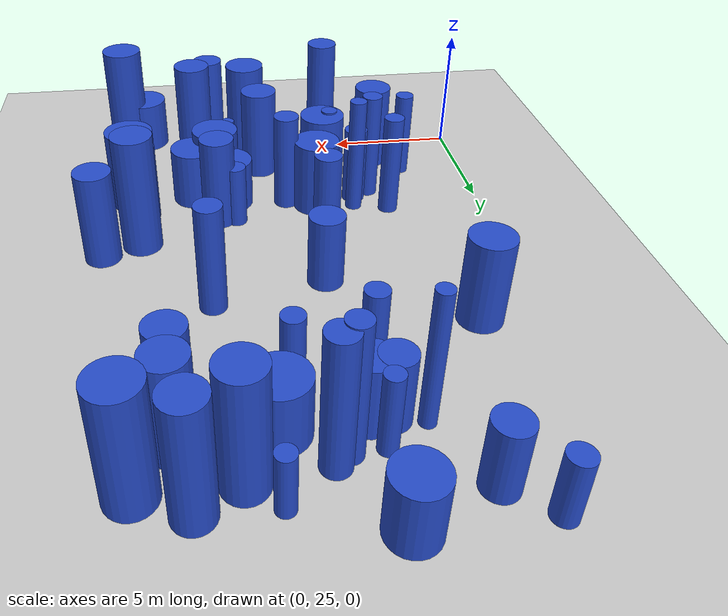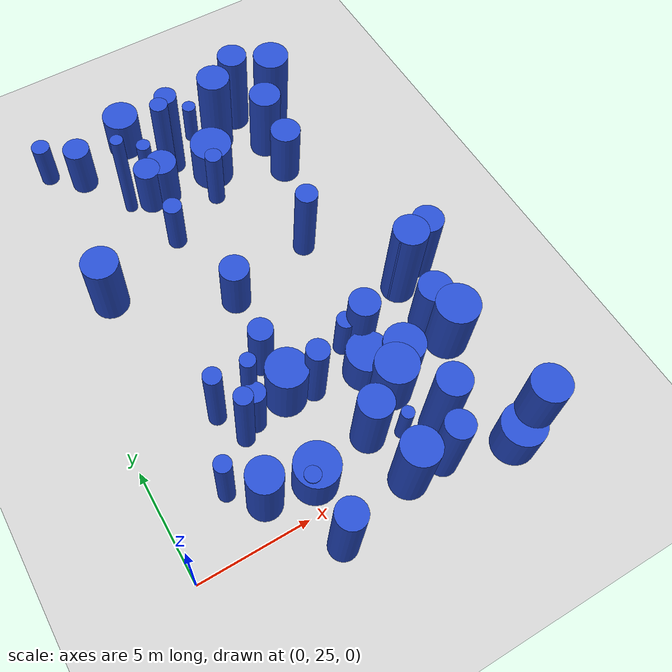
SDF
<sdf version="1.6">
 <world name="default">
  <model name="ground_plane">
   <static>1</static>
   <link name="link">
    <collision name="collision">
     <geometry><plane><normal>0 0 1</normal><size>100 100</size></plane></geometry>
     <surface><friction><ode><mu>100</mu><mu2>50</mu2></ode></friction></surface>
    </collision>
    <visual name="visual">
     <cast_shadows>0</cast_shadows>
     <geometry><plane><normal>0 0 1</normal><size>100 100</size></plane></geometry>
     <material>
      <script><uri>file://media/materials/scripts/gazebo.material</uri><name>Gazebo/Grey</name></script>
     </material>
    </visual>
   </link>
  </model>
  <model name="12">
   <static>0</static>
   <link name="link">
    <inertial>
     <mass>2</mass>
     <inertia><ixx>1.27619</ixx><ixy>0</ixy><ixz>0</ixz><iyy>1.27619</iyy><iyz>0</iyz><izz>0.925435</izz></inertia>
    </inertial>
    <collision name="collision">
     <geometry><cylinder><length>2.20927</length><radius>0.961995</radius></cylinder></geometry>
     <surface><contact><collide_without_contact>1</collide_without_contact></contact></surface>
    </collision>
    <visual name="visual">
     <geometry><cylinder><length>2.20927</length><radius>0.961995</radius></cylinder></geometry>
     <material>
      <script><uri>file://media/materials/scripts/gazebo.material</uri><name>Gazebo/Blue</name></script>
     </material>
    </visual>
    <gravity>0</gravity>
   </link>
   <pose>5.95857 26.1958 1.10463 0 -0 0</pose>
  </model>
  <model name="17">
   <static>0</static>
   <link name="link">
    <inertial>
     <mass>2</mass>
     <inertia><ixx>2.36762</ixx><ixy>0</ixy><ixz>0</ixz><iyy>2.36762</iyy><iyz>0</iyz><izz>0.56369</izz></inertia>
    </inertial>
    <collision name="collision">
     <geometry><cylinder><length>3.53761</length><radius>0.750793</radius></cylinder></geometry>
     <surface><contact><collide_without_contact>1</collide_without_contact></contact></surface>
    </collision>
    <visual name="visual">
     <geometry><cylinder><length>3.53761</length><radius>0.750793</radius></cylinder></geometry>
     <material>
      <script><uri>file://media/materials/scripts/gazebo.material</uri><name>Gazebo/Blue</name></script>
     </material>
    </visual>
    <gravity>0</gravity>
   </link>
   <pose>3.8069 26.4539 1.7688 0 -0 0</pose>
  </model>
  <model name="38">
   <static>0</static>
   <link name="link">
    <inertial>
     <mass>2</mass>
     <inertia>
      <ixx>0.928398</ixx>
      <ixy>0</ixy>
      <ixz>0</ixz>
      <iyy>0.928398</iyy>
      <iyz>0</iyz>
      <izz>0.123325</izz>
     </inertia>
    </inertial>
    <collision name="collision">
     <geometry><cylinder><length>2.28044</length><radius>0.351177</radius></cylinder></geometry>
     <surface><contact><collide_without_contact>1</collide_without_contact></contact></surface>
    </collision>
    <visual name="visual">
     <geometry><cylinder><length>2.28044</length><radius>0.351177</radius></cylinder></geometry>
     <material>
      <script><uri>file://media/materials/scripts/gazebo.material</uri><name>Gazebo/Blue</name></script>
     </material>
    </visual>
    <gravity>0</gravity>
   </link>
   <pose>5.59868 25.9297 1.14022 0 -0 0</pose>
  </model>
  <model name="41">
   <static>0</static>
   <link name="link">
    <inertial>
     <mass>2</mass>
     <inertia><ixx>4.24794</ixx><ixy>0</ixy><ixz>0</ixz><iyy>4.24794</iyy><iyz>0</iyz><izz>0.162608</izz></inertia>
    </inertial>
    <collision name="collision">
     <geometry><cylinder><length>4.99998</length><radius>0.403246</radius></cylinder></geometry>
     <surface><contact><collide_without_contact>1</collide_without_contact></contact></surface>
    </collision>
    <visual name="visual">
     <geometry><cylinder><length>4.99998</length><radius>0.403246</radius></cylinder></geometry>
     <material>
      <script><uri>file://media/materials/scripts/gazebo.material</uri><name>Gazebo/Blue</name></script>
     </material>
    </visual>
    <gravity>0</gravity>
   </link>
   <pose>7.77155 42.938 2.49999 0 -0 0</pose>
  </model>
  <model name="42">
   <static>0</static>
   <link name="link">
    <inertial>
     <mass>2</mass>
     <inertia>
      <ixx>4.19788</ixx>
      <ixy>0</ixy>
      <ixz>0</ixz>
      <iyy>4.19788</iyy>
      <iyz>0</iyz>
      <izz>0.0844153</izz>
     </inertia>
    </inertial>
    <collision name="collision">
     <geometry><cylinder><length>4.9934</length><radius>0.290543</radius></cylinder></geometry>
     <surface><contact><collide_without_contact>1</collide_without_contact></contact></surface>
    </collision>
    <visual name="visual">
     <geometry><cylinder><length>4.9934</length><radius>0.290543</radius></cylinder></geometry>
     <material>
      <script><uri>file://media/materials/scripts/gazebo.material</uri><name>Gazebo/Blue</name></script>
     </material>
    </visual>
    <gravity>0</gravity>
   </link>
   <pose>5.32712 42.0448 2.4967 0 -0 0</pose>
  </model>
  <model name="43">
   <static>0</static>
   <link name="link">
    <inertial>
     <mass>2</mass>
     <inertia><ixx>1.11898</ixx><ixy>0</ixy><ixz>0</ixz><iyy>1.11898</iyy><iyz>0</iyz><izz>0.887933</izz></inertia>
    </inertial>
    <collision name="collision">
     <geometry><cylinder><length>2.01248</length><radius>0.942302</radius></cylinder></geometry>
     <surface><contact><collide_without_contact>1</collide_without_contact></contact></surface>
    </collision>
    <visual name="visual">
     <geometry><cylinder><length>2.01248</length><radius>0.942302</radius></cylinder></geometry>
     <material>
      <script><uri>file://media/materials/scripts/gazebo.material</uri><name>Gazebo/Blue</name></script>
     </material>
    </visual>
    <gravity>0</gravity>
   </link>
   <pose>10.2971 29.319 1.00624 0 -0 0</pose>
  </model>
  <model name="52">
   <static>0</static>
   <link name="link">
    <inertial>
     <mass>2</mass>
     <inertia>
      <ixx>3.67726</ixx>
      <ixy>0</ixy>
      <ixz>0</ixz>
      <iyy>3.67726</iyy>
      <iyz>0</iyz>
      <izz>0.0947076</izz>
     </inertia>
    </inertial>
    <collision name="collision">
     <geometry><cylinder><length>4.66685</length><radius>0.307746</radius></cylinder></geometry>
     <surface><contact><collide_without_contact>1</collide_without_contact></contact></surface>
    </collision>
    <visual name="visual">
     <geometry><cylinder><length>4.66685</length><radius>0.307746</radius></cylinder></geometry>
     <material>
      <script><uri>file://media/materials/scripts/gazebo.material</uri><name>Gazebo/Blue</name></script>
     </material>
    </visual>
    <gravity>0</gravity>
   </link>
   <pose>13.41 31.8865 2.33342 0 -0 0</pose>
  </model>
  <model name="56">
   <static>0</static>
   <link name="link">
    <inertial>
     <mass>2</mass>
     <inertia><ixx>1.56191</ixx><ixy>0</ixy><ixz>0</ixz><iyy>1.56191</iyy><iyz>0</iyz><izz>0.435046</izz></inertia>
    </inertial>
    <collision name="collision">
     <geometry><cylinder><length>2.84013</length><radius>0.65958</radius></cylinder></geometry>
     <surface><contact><collide_without_contact>1</collide_without_contact></contact></surface>
    </collision>
    <visual name="visual">
     <geometry><cylinder><length>2.84013</length><radius>0.65958</radius></cylinder></geometry>
     <material>
      <script><uri>file://media/materials/scripts/gazebo.material</uri><name>Gazebo/Blue</name></script>
     </material>
    </visual>
    <gravity>0</gravity>
   </link>
   <pose>7.21091 35.0864 1.42006 0 -0 0</pose>
  </model>
  <model name="59">
   <static>0</static>
   <link name="link">
    <inertial>
     <mass>2</mass>
     <inertia><ixx>1.77923</ixx><ixy>0</ixy><ixz>0</ixz><iyy>1.77923</iyy><iyz>0</iyz><izz>0.488407</izz></inertia>
    </inertial>
    <collision name="collision">
     <geometry><cylinder><length>3.03483</length><radius>0.698861</radius></cylinder></geometry>
     <surface><contact><collide_without_contact>1</collide_without_contact></contact></surface>
    </collision>
    <visual name="visual">
     <geometry><cylinder><length>3.03483</length><radius>0.698861</radius></cylinder></geometry>
     <material>
      <script><uri>file://media/materials/scripts/gazebo.material</uri><name>Gazebo/Blue</name></script>
     </material>
    </visual>
    <gravity>0</gravity>
   </link>
   <pose>12.759 40.3292 1.51741 0 -0 0</pose>
  </model>
  <model name="61">
   <static>0</static>
   <link name="link">
    <inertial>
     <mass>2</mass>
     <inertia><ixx>2.9263</ixx><ixy>0</ixy><ixz>0</ixz><iyy>2.9263</iyy><iyz>0</iyz><izz>0.149705</izz></inertia>
    </inertial>
    <collision name="collision">
     <geometry><cylinder><length>4.13626</length><radius>0.386917</radius></cylinder></geometry>
     <surface><contact><collide_without_contact>1</collide_without_contact></contact></surface>
    </collision>
    <visual name="visual">
     <geometry><cylinder><length>4.13626</length><radius>0.386917</radius></cylinder></geometry>
     <material>
      <script><uri>file://media/materials/scripts/gazebo.material</uri><name>Gazebo/Blue</name></script>
     </material>
    </visual>
    <gravity>0</gravity>
   </link>
   <pose>3.87976 30.6038 2.06813 0 -0 0</pose>
  </model>
  <model name="64">
   <static>0</static>
   <link name="link">
    <inertial>
     <mass>2</mass>
     <inertia><ixx>3.05222</ixx><ixy>0</ixy><ixz>0</ixz><iyy>3.05222</iyy><iyz>0</iyz><izz>0.246295</izz></inertia>
    </inertial>
    <collision name="collision">
     <geometry><cylinder><length>4.19219</length><radius>0.496281</radius></cylinder></geometry>
     <surface><contact><collide_without_contact>1</collide_without_contact></contact></surface>
    </collision>
    <visual name="visual">
     <geometry><cylinder><length>4.19219</length><radius>0.496281</radius></cylinder></geometry>
     <material>
      <script><uri>file://media/materials/scripts/gazebo.material</uri><name>Gazebo/Blue</name></script>
     </material>
    </visual>
    <gravity>0</gravity>
   </link>
   <pose>11.3018 36.0602 2.09609 0 -0 0</pose>
  </model>
  <model name="65">
   <static>0</static>
   <link name="link">
    <inertial>
     <mass>2</mass>
     <inertia><ixx>4.07214</ixx><ixy>0</ixy><ixz>0</ixz><iyy>4.07214</iyy><iyz>0</iyz><izz>0.583035</izz></inertia>
    </inertial>
    <collision name="collision">
     <geometry><cylinder><length>4.76274</length><radius>0.763567</radius></cylinder></geometry>
     <surface><contact><collide_without_contact>1</collide_without_contact></contact></surface>
    </collision>
    <visual name="visual">
     <geometry><cylinder><length>4.76274</length><radius>0.763567</radius></cylinder></geometry>
     <material>
      <script><uri>file://media/materials/scripts/gazebo.material</uri><name>Gazebo/Blue</name></script>
     </material>
    </visual>
    <gravity>0</gravity>
   </link>
   <pose>13.8342 32.044 2.38137 0 -0 0</pose>
  </model>
  <model name="68">
   <static>0</static>
   <link name="link">
    <inertial>
     <mass>2</mass>
     <inertia><ixx>2.56035</ixx><ixy>0</ixy><ixz>0</ixz><iyy>2.56035</iyy><iyz>0</iyz><izz>0.482898</izz></inertia>
    </inertial>
    <collision name="collision">
     <geometry><cylinder><length>3.73007</length><radius>0.694909</radius></cylinder></geometry>
     <surface><contact><collide_without_contact>1</collide_without_contact></contact></surface>
    </collision>
    <visual name="visual">
     <geometry><cylinder><length>3.73007</length><radius>0.694909</radius></cylinder></geometry>
     <material>
      <script><uri>file://media/materials/scripts/gazebo.material</uri><name>Gazebo/Blue</name></script>
     </material>
    </visual>
    <gravity>0</gravity>
   </link>
   <pose>15.2838 32.6616 1.86504 0 -0 0</pose>
  </model>
  <model name="84">
   <static>0</static>
   <link name="link">
    <inertial>
     <mass>2</mass>
     <inertia><ixx>1.96542</ixx><ixy>0</ixy><ixz>0</ixz><iyy>1.96542</iyy><iyz>0</iyz><izz>0.55372</izz></inertia>
    </inertial>
    <collision name="collision">
     <geometry><cylinder><length>3.18298</length><radius>0.744123</radius></cylinder></geometry>
     <surface><contact><collide_without_contact>1</collide_without_contact></contact></surface>
    </collision>
    <visual name="visual">
     <geometry><cylinder><length>3.18298</length><radius>0.744123</radius></cylinder></geometry>
     <material>
      <script><uri>file://media/materials/scripts/gazebo.material</uri><name>Gazebo/Blue</name></script>
     </material>
    </visual>
    <gravity>0</gravity>
   </link>
   <pose>13.9097 30.0086 1.59149 0 -0 0</pose>
  </model>
  <model name="87">
   <static>0</static>
   <link name="link">
    <inertial>
     <mass>2</mass>
     <inertia><ixx>2.24731</ixx><ixy>0</ixy><ixz>0</ixz><iyy>2.24731</iyy><iyz>0</iyz><izz>0.904156</izz></inertia>
    </inertial>
    <collision name="collision">
     <geometry><cylinder><length>3.28198</length><radius>0.950871</radius></cylinder></geometry>
     <surface><contact><collide_without_contact>1</collide_without_contact></contact></surface>
    </collision>
    <visual name="visual">
     <geometry><cylinder><length>3.28198</length><radius>0.950871</radius></cylinder></geometry>
     <material>
      <script><uri>file://media/materials/scripts/gazebo.material</uri><name>Gazebo/Blue</name></script>
     </material>
    </visual>
    <gravity>0</gravity>
   </link>
   <pose>14.2112 28.8442 1.64099 0 -0 0</pose>
  </model>
  <model name="88">
   <static>0</static>
   <link name="link">
    <inertial>
     <mass>2</mass>
     <inertia><ixx>2.97237</ixx><ixy>0</ixy><ixz>0</ixz><iyy>2.97237</iyy><iyz>0</iyz><izz>0.674588</izz></inertia>
    </inertial>
    <collision name="collision">
     <geometry><cylinder><length>3.97624</length><radius>0.821333</radius></cylinder></geometry>
     <surface><contact><collide_without_contact>1</collide_without_contact></contact></surface>
    </collision>
    <visual name="visual">
     <geometry><cylinder><length>3.97624</length><radius>0.821333</radius></cylinder></geometry>
     <material>
      <script><uri>file://media/materials/scripts/gazebo.material</uri><name>Gazebo/Blue</name></script>
     </material>
    </visual>
    <gravity>0</gravity>
   </link>
   <pose>9.23452 24.4216 1.98812 0 -0 0</pose>
  </model>
  <model name="89">
   <static>0</static>
   <link name="link">
    <inertial>
     <mass>2</mass>
     <inertia><ixx>3.86103</ixx><ixy>0</ixy><ixz>0</ixz><iyy>3.86103</iyy><iyz>0</iyz><izz>0.517319</izz></inertia>
    </inertial>
    <collision name="collision">
     <geometry><cylinder><length>4.64911</length><radius>0.719249</radius></cylinder></geometry>
     <surface><contact><collide_without_contact>1</collide_without_contact></contact></surface>
    </collision>
    <visual name="visual">
     <geometry><cylinder><length>4.64911</length><radius>0.719249</radius></cylinder></geometry>
     <material>
      <script><uri>file://media/materials/scripts/gazebo.material</uri><name>Gazebo/Blue</name></script>
     </material>
    </visual>
    <gravity>0</gravity>
   </link>
   <pose>11.5608 25.8149 2.32455 0 -0 0</pose>
  </model>
  <model name="92">
   <static>0</static>
   <link name="link">
    <inertial>
     <mass>2</mass>
     <inertia><ixx>4.21808</ixx><ixy>0</ixy><ixz>0</ixz><iyy>4.21808</iyy><iyz>0</iyz><izz>0.253696</izz></inertia>
    </inertial>
    <collision name="collision">
     <geometry><cylinder><length>4.95453</length><radius>0.503682</radius></cylinder></geometry>
     <surface><contact><collide_without_contact>1</collide_without_contact></contact></surface>
    </collision>
    <visual name="visual">
     <geometry><cylinder><length>4.95453</length><radius>0.503682</radius></cylinder></geometry>
     <material>
      <script><uri>file://media/materials/scripts/gazebo.material</uri><name>Gazebo/Blue</name></script>
     </material>
    </visual>
    <gravity>0</gravity>
   </link>
   <pose>8.25943 43.2878 2.47727 0 -0 0</pose>
  </model>
  <model name="96">
   <static>0</static>
   <link name="link">
    <inertial>
     <mass>2</mass>
     <inertia><ixx>1.33841</ixx><ixy>0</ixy><ixz>0</ixz><iyy>1.33841</iyy><iyz>0</iyz><izz>0.366534</izz></inertia>
    </inertial>
    <collision name="collision">
     <geometry><cylinder><length>2.63265</length><radius>0.60542</radius></cylinder></geometry>
     <surface><contact><collide_without_contact>1</collide_without_contact></contact></surface>
    </collision>
    <visual name="visual">
     <geometry><cylinder><length>2.63265</length><radius>0.60542</radius></cylinder></geometry>
     <material>
      <script><uri>file://media/materials/scripts/gazebo.material</uri><name>Gazebo/Blue</name></script>
     </material>
    </visual>
    <gravity>0</gravity>
   </link>
   <pose>6.3203 41.7983 1.31632 0 -0 0</pose>
  </model>
  <model name="104">
   <static>0</static>
   <link name="link">
    <inertial>
     <mass>2</mass>
     <inertia>
      <ixx>0.866746</ixx>
      <ixy>0</ixy>
      <ixz>0</ixz>
      <iyy>0.866746</iyy>
      <iyz>0</iyz>
      <izz>0.105059</izz>
     </inertia>
    </inertial>
    <collision name="collision">
     <geometry><cylinder><length>2.21027</length><radius>0.324128</radius></cylinder></geometry>
     <surface><contact><collide_without_contact>1</collide_without_contact></contact></surface>
    </collision>
    <visual name="visual">
     <geometry><cylinder><length>2.21027</length><radius>0.324128</radius></cylinder></geometry>
     <material>
      <script><uri>file://media/materials/scripts/gazebo.material</uri><name>Gazebo/Blue</name></script>
     </material>
    </visual>
    <gravity>0</gravity>
   </link>
   <pose>9.80388 44.4915 1.10514 0 -0 0</pose>
  </model>
  <model name="112">
   <static>0</static>
   <link name="link">
    <inertial>
     <mass>2</mass>
     <inertia><ixx>2.22524</ixx><ixy>0</ixy><ixz>0</ixz><iyy>2.22524</iyy><iyz>0</iyz><izz>0.133987</izz></inertia>
    </inertial>
    <collision name="collision">
     <geometry><cylinder><length>3.59854</length><radius>0.366043</radius></cylinder></geometry>
     <surface><contact><collide_without_contact>1</collide_without_contact></contact></surface>
    </collision>
    <visual name="visual">
     <geometry><cylinder><length>3.59854</length><radius>0.366043</radius></cylinder></geometry>
     <material>
      <script><uri>file://media/materials/scripts/gazebo.material</uri><name>Gazebo/Blue</name></script>
     </material>
    </visual>
    <gravity>0</gravity>
   </link>
   <pose>2.67065 27.5483 1.79927 0 -0 0</pose>
  </model>
  <model name="125">
   <static>0</static>
   <link name="link">
    <inertial>
     <mass>2</mass>
     <inertia><ixx>3.64166</ixx><ixy>0</ixy><ixz>0</ixz><iyy>3.64166</iyy><iyz>0</iyz><izz>0.572656</izz></inertia>
    </inertial>
    <collision name="collision">
     <geometry><cylinder><length>4.48687</length><radius>0.756741</radius></cylinder></geometry>
     <surface><contact><collide_without_contact>1</collide_without_contact></contact></surface>
    </collision>
    <visual name="visual">
     <geometry><cylinder><length>4.48687</length><radius>0.756741</radius></cylinder></geometry>
     <material>
      <script><uri>file://media/materials/scripts/gazebo.material</uri><name>Gazebo/Blue</name></script>
     </material>
    </visual>
    <gravity>0</gravity>
   </link>
   <pose>10.7911 43.5918 2.24344 0 -0 0</pose>
  </model>
  <model name="135">
   <static>0</static>
   <link name="link">
    <inertial>
     <mass>2</mass>
     <inertia><ixx>2.66442</ixx><ixy>0</ixy><ixz>0</ixz><iyy>2.66442</iyy><iyz>0</iyz><izz>0.539051</izz></inertia>
    </inertial>
    <collision name="collision">
     <geometry><cylinder><length>3.7907</length><radius>0.734201</radius></cylinder></geometry>
     <surface><contact><collide_without_contact>1</collide_without_contact></contact></surface>
    </collision>
    <visual name="visual">
     <geometry><cylinder><length>3.7907</length><radius>0.734201</radius></cylinder></geometry>
     <material>
      <script><uri>file://media/materials/scripts/gazebo.material</uri><name>Gazebo/Blue</name></script>
     </material>
    </visual>
    <gravity>0</gravity>
   </link>
   <pose>8.82373 26.7736 1.89535 0 -0 0</pose>
  </model>
  <model name="149">
   <static>0</static>
   <link name="link">
    <inertial>
     <mass>2</mass>
     <inertia><ixx>3.48042</ixx><ixy>0</ixy><ixz>0</ixz><iyy>3.48042</iyy><iyz>0</iyz><izz>0.680354</izz></inertia>
    </inertial>
    <collision name="collision">
     <geometry><cylinder><length>4.34067</length><radius>0.824836</radius></cylinder></geometry>
     <surface><contact><collide_without_contact>1</collide_without_contact></contact></surface>
    </collision>
    <visual name="visual">
     <geometry><cylinder><length>4.34067</length><radius>0.824836</radius></cylinder></geometry>
     <material>
      <script><uri>file://media/materials/scripts/gazebo.material</uri><name>Gazebo/Blue</name></script>
     </material>
    </visual>
    <gravity>0</gravity>
   </link>
   <pose>13.8489 43.6199 2.17034 0 -0 0</pose>
  </model>
  <model name="151">
   <static>0</static>
   <link name="link">
    <inertial>
     <mass>2</mass>
     <inertia><ixx>2.48162</ixx><ixy>0</ixy><ixz>0</ixz><iyy>2.48162</iyy><iyz>0</iyz><izz>0.443338</izz></inertia>
    </inertial>
    <collision name="collision">
     <geometry><cylinder><length>3.68235</length><radius>0.665836</radius></cylinder></geometry>
     <surface><contact><collide_without_contact>1</collide_without_contact></contact></surface>
    </collision>
    <visual name="visual">
     <geometry><cylinder><length>3.68235</length><radius>0.665836</radius></cylinder></geometry>
     <material>
      <script><uri>file://media/materials/scripts/gazebo.material</uri><name>Gazebo/Blue</name></script>
     </material>
    </visual>
    <gravity>0</gravity>
   </link>
   <pose>10.7873 30.6197 1.84118 0 -0 0</pose>
  </model>
  <model name="153">
   <static>0</static>
   <link name="link">
    <inertial>
     <mass>2</mass>
     <inertia><ixx>1.40308</ixx><ixy>0</ixy><ixz>0</ixz><iyy>1.40308</iyy><iyz>0</iyz><izz>0.496893</izz></inertia>
    </inertial>
    <collision name="collision">
     <geometry><cylinder><length>2.63207</length><radius>0.704907</radius></cylinder></geometry>
     <surface><contact><collide_without_contact>1</collide_without_contact></contact></surface>
    </collision>
    <visual name="visual">
     <geometry><cylinder><length>2.63207</length><radius>0.704907</radius></cylinder></geometry>
     <material>
      <script><uri>file://media/materials/scripts/gazebo.material</uri><name>Gazebo/Blue</name></script>
     </material>
    </visual>
    <gravity>0</gravity>
   </link>
   <pose>7.04977 41.8099 1.31604 0 -0 0</pose>
  </model>
  <model name="161">
   <static>0</static>
   <link name="link">
    <inertial>
     <mass>2</mass>
     <inertia><ixx>4.00763</ixx><ixy>0</ixy><ixz>0</ixz><iyy>4.00763</iyy><iyz>0</iyz><izz>0.65728</izz></inertia>
    </inertial>
    <collision name="collision">
     <geometry><cylinder><length>4.69829</length><radius>0.810728</radius></cylinder></geometry>
     <surface><contact><collide_without_contact>1</collide_without_contact></contact></surface>
    </collision>
    <visual name="visual">
     <geometry><cylinder><length>4.69829</length><radius>0.810728</radius></cylinder></geometry>
     <material>
      <script><uri>file://media/materials/scripts/gazebo.material</uri><name>Gazebo/Blue</name></script>
     </material>
    </visual>
    <gravity>0</gravity>
   </link>
   <pose>14.5574 23.8871 2.34915 0 -0 0</pose>
  </model>
  <model name="164">
   <static>0</static>
   <link name="link">
    <inertial>
     <mass>2</mass>
     <inertia><ixx>1.12381</ixx><ixy>0</ixy><ixz>0</ixz><iyy>1.12381</iyy><iyz>0</iyz><izz>0.161791</izz></inertia>
    </inertial>
    <collision name="collision">
     <geometry><cylinder><length>2.5015</length><radius>0.402233</radius></cylinder></geometry>
     <surface><contact><collide_without_contact>1</collide_without_contact></contact></surface>
    </collision>
    <visual name="visual">
     <geometry><cylinder><length>2.5015</length><radius>0.402233</radius></cylinder></geometry>
     <material>
      <script><uri>file://media/materials/scripts/gazebo.material</uri><name>Gazebo/Blue</name></script>
     </material>
    </visual>
    <gravity>0</gravity>
   </link>
   <pose>10.107 30.8018 1.25075 0 -0 0</pose>
  </model>
  <model name="165">
   <static>0</static>
   <link name="link">
    <inertial>
     <mass>2</mass>
     <inertia><ixx>1.03255</ixx><ixy>0</ixy><ixz>0</ixz><iyy>1.03255</iyy><iyz>0</iyz><izz>0.176958</izz></inertia>
    </inertial>
    <collision name="collision">
     <geometry><cylinder><length>2.38001</length><radius>0.420664</radius></cylinder></geometry>
     <surface><contact><collide_without_contact>1</collide_without_contact></contact></surface>
    </collision>
    <visual name="visual">
     <geometry><cylinder><length>2.38001</length><radius>0.420664</radius></cylinder></geometry>
     <material>
      <script><uri>file://media/materials/scripts/gazebo.material</uri><name>Gazebo/Blue</name></script>
     </material>
    </visual>
    <gravity>0</gravity>
   </link>
   <pose>2.63785 45.5585 1.19 0 -0 0</pose>
  </model>
  <model name="167">
   <static>0</static>
   <link name="link">
    <inertial>
     <mass>2</mass>
     <inertia><ixx>3.80657</ixx><ixy>0</ixy><ixz>0</ixz><iyy>3.80657</iyy><iyz>0</iyz><izz>0.106043</izz></inertia>
    </inertial>
    <collision name="collision">
     <geometry><cylinder><length>4.74566</length><radius>0.325643</radius></cylinder></geometry>
     <surface><contact><collide_without_contact>1</collide_without_contact></contact></surface>
    </collision>
    <visual name="visual">
     <geometry><cylinder><length>4.74566</length><radius>0.325643</radius></cylinder></geometry>
     <material>
      <script><uri>file://media/materials/scripts/gazebo.material</uri><name>Gazebo/Blue</name></script>
     </material>
    </visual>
    <gravity>0</gravity>
   </link>
   <pose>5.24562 30.2544 2.37283 0 -0 0</pose>
  </model>
  <model name="169">
   <static>0</static>
   <link name="link">
    <inertial>
     <mass>2</mass>
     <inertia><ixx>1.68061</ixx><ixy>0</ixy><ixz>0</ixz><iyy>1.68061</iyy><iyz>0</iyz><izz>0.872903</izz></inertia>
    </inertial>
    <collision name="collision">
     <geometry><cylinder><length>2.73221</length><radius>0.934293</radius></cylinder></geometry>
     <surface><contact><collide_without_contact>1</collide_without_contact></contact></surface>
    </collision>
    <visual name="visual">
     <geometry><cylinder><length>2.73221</length><radius>0.934293</radius></cylinder></geometry>
     <material>
      <script><uri>file://media/materials/scripts/gazebo.material</uri><name>Gazebo/Blue</name></script>
     </material>
    </visual>
    <gravity>0</gravity>
   </link>
   <pose>10.7726 28.0436 1.3661 0 -0 0</pose>
  </model>
  <model name="176">
   <static>0</static>
   <link name="link">
    <inertial>
     <mass>2</mass>
     <inertia><ixx>3.34478</ixx><ixy>0</ixy><ixz>0</ixz><iyy>3.34478</iyy><iyz>0</iyz><izz>0.153505</izz></inertia>
    </inertial>
    <collision name="collision">
     <geometry><cylinder><length>4.42811</length><radius>0.391798</radius></cylinder></geometry>
     <surface><contact><collide_without_contact>1</collide_without_contact></contact></surface>
    </collision>
    <visual name="visual">
     <geometry><cylinder><length>4.42811</length><radius>0.391798</radius></cylinder></geometry>
     <material>
      <script><uri>file://media/materials/scripts/gazebo.material</uri><name>Gazebo/Blue</name></script>
     </material>
    </visual>
    <gravity>0</gravity>
   </link>
   <pose>4.45821 29.1911 2.21406 0 -0 0</pose>
  </model>
  <model name="179">
   <static>0</static>
   <link name="link">
    <inertial>
     <mass>2</mass>
     <inertia><ixx>1.22891</ixx><ixy>0</ixy><ixz>0</ixz><iyy>1.22891</iyy><iyz>0</iyz><izz>0.890975</izz></inertia>
    </inertial>
    <collision name="collision">
     <geometry><cylinder><length>2.16807</length><radius>0.943915</radius></cylinder></geometry>
     <surface><contact><collide_without_contact>1</collide_without_contact></contact></surface>
    </collision>
    <visual name="visual">
     <geometry><cylinder><length>2.16807</length><radius>0.943915</radius></cylinder></geometry>
     <material>
      <script><uri>file://media/materials/scripts/gazebo.material</uri><name>Gazebo/Blue</name></script>
     </material>
    </visual>
    <gravity>0</gravity>
   </link>
   <pose>13.8206 23.5763 1.08403 0 -0 0</pose>
  </model>
  <model name="194">
   <static>0</static>
   <link name="link">
    <inertial>
     <mass>2</mass>
     <inertia><ixx>3.51472</ixx><ixy>0</ixy><ixz>0</ixz><iyy>3.51472</iyy><iyz>0</iyz><izz>0.397602</izz></inertia>
    </inertial>
    <collision name="collision">
     <geometry><cylinder><length>4.46044</length><radius>0.630557</radius></cylinder></geometry>
     <surface><contact><collide_without_contact>1</collide_without_contact></contact></surface>
    </collision>
    <visual name="visual">
     <geometry><cylinder><length>4.46044</length><radius>0.630557</radius></cylinder></geometry>
     <material>
      <script><uri>file://media/materials/scripts/gazebo.material</uri><name>Gazebo/Blue</name></script>
     </material>
    </visual>
    <gravity>0</gravity>
   </link>
   <pose>5.59986 23.5037 2.23022 0 -0 0</pose>
  </model>
  <model name="195">
   <static>0</static>
   <link name="link">
    <inertial>
     <mass>2</mass>
     <inertia><ixx>1.29107</ixx><ixy>0</ixy><ixz>0</ixz><iyy>1.29107</iyy><iyz>0</iyz><izz>0.375446</izz></inertia>
    </inertial>
    <collision name="collision">
     <geometry><cylinder><length>2.57295</length><radius>0.612736</radius></cylinder></geometry>
     <surface><contact><collide_without_contact>1</collide_without_contact></contact></surface>
    </collision>
    <visual name="visual">
     <geometry><cylinder><length>2.57295</length><radius>0.612736</radius></cylinder></geometry>
     <material>
      <script><uri>file://media/materials/scripts/gazebo.material</uri><name>Gazebo/Blue</name></script>
     </material>
    </visual>
    <gravity>0</gravity>
   </link>
   <pose>3.99616 44.4755 1.28648 0 -0 0</pose>
  </model>
  <model name="197">
   <static>0</static>
   <link name="link">
    <inertial>
     <mass>2</mass>
     <inertia><ixx>1.33691</ixx><ixy>0</ixy><ixz>0</ixz><iyy>1.33691</iyy><iyz>0</iyz><izz>0.943179</izz></inertia>
    </inertial>
    <collision name="collision">
     <geometry><cylinder><length>2.27858</length><radius>0.971174</radius></cylinder></geometry>
     <surface><contact><collide_without_contact>1</collide_without_contact></contact></surface>
    </collision>
    <visual name="visual">
     <geometry><cylinder><length>2.27858</length><radius>0.971174</radius></cylinder></geometry>
     <material>
      <script><uri>file://media/materials/scripts/gazebo.material</uri><name>Gazebo/Blue</name></script>
     </material>
    </visual>
    <gravity>0</gravity>
   </link>
   <pose>9.64033 41.9036 1.13929 0 -0 0</pose>
  </model>
  <model name="198">
   <static>0</static>
   <link name="link">
    <inertial>
     <mass>2</mass>
     <inertia><ixx>2.29288</ixx><ixy>0</ixy><ixz>0</ixz><iyy>2.29288</iyy><iyz>0</iyz><izz>0.669061</izz></inertia>
    </inertial>
    <collision name="collision">
     <geometry><cylinder><length>3.42784</length><radius>0.817961</radius></cylinder></geometry>
     <surface><contact><collide_without_contact>1</collide_without_contact></contact></surface>
    </collision>
    <visual name="visual">
     <geometry><cylinder><length>3.42784</length><radius>0.817961</radius></cylinder></geometry>
     <material>
      <script><uri>file://media/materials/scripts/gazebo.material</uri><name>Gazebo/Blue</name></script>
     </material>
    </visual>
    <gravity>0</gravity>
   </link>
   <pose>2.32109 37.7652 1.71392 0 -0 0</pose>
  </model>
  <model name="200">
   <static>0</static>
   <link name="link">
    <inertial>
     <mass>2</mass>
     <inertia><ixx>1.22683</ixx><ixy>0</ixy><ixz>0</ixz><iyy>1.22683</iyy><iyz>0</iyz><izz>0.70683</izz></inertia>
    </inertial>
    <collision name="collision">
     <geometry><cylinder><length>2.28921</length><radius>0.840732</radius></cylinder></geometry>
     <surface><contact><collide_without_contact>1</collide_without_contact></contact></surface>
    </collision>
    <visual name="visual">
     <geometry><cylinder><length>2.28921</length><radius>0.840732</radius></cylinder></geometry>
     <material>
      <script><uri>file://media/materials/scripts/gazebo.material</uri><name>Gazebo/Blue</name></script>
     </material>
    </visual>
    <gravity>0</gravity>
   </link>
   <pose>6.6681 45.536 1.14461 0 -0 0</pose>
  </model>
  <model name="201">
   <static>0</static>
   <link name="link">
    <inertial>
     <mass>2</mass>
     <inertia><ixx>1.42204</ixx><ixy>0</ixy><ixz>0</ixz><iyy>1.42204</iyy><iyz>0</iyz><izz>0.184462</izz></inertia>
    </inertial>
    <collision name="collision">
     <geometry><cylinder><length>2.82469</length><radius>0.429491</radius></cylinder></geometry>
     <surface><contact><collide_without_contact>1</collide_without_contact></contact></surface>
    </collision>
    <visual name="visual">
     <geometry><cylinder><length>2.82469</length><radius>0.429491</radius></cylinder></geometry>
     <material>
      <script><uri>file://media/materials/scripts/gazebo.material</uri><name>Gazebo/Blue</name></script>
     </material>
    </visual>
    <gravity>0</gravity>
   </link>
   <pose>6.37197 39.2482 1.41234 0 -0 0</pose>
  </model>
  <model name="205">
   <static>0</static>
   <link name="link">
    <inertial>
     <mass>2</mass>
     <inertia><ixx>2.73787</ixx><ixy>0</ixy><ixz>0</ixz><iyy>2.73787</iyy><iyz>0</iyz><izz>0.243037</izz></inertia>
    </inertial>
    <collision name="collision">
     <geometry><cylinder><length>3.96209</length><radius>0.492987</radius></cylinder></geometry>
     <surface><contact><collide_without_contact>1</collide_without_contact></contact></surface>
    </collision>
    <visual name="visual">
     <geometry><cylinder><length>3.96209</length><radius>0.492987</radius></cylinder></geometry>
     <material>
      <script><uri>file://media/materials/scripts/gazebo.material</uri><name>Gazebo/Blue</name></script>
     </material>
    </visual>
    <gravity>0</gravity>
   </link>
   <pose>7.9789 29.6226 1.98104 0 -0 0</pose>
  </model>
  <model name="207">
   <static>0</static>
   <link name="link">
    <inertial>
     <mass>2</mass>
     <inertia><ixx>1.32975</ixx><ixy>0</ixy><ixz>0</ixz><iyy>1.32975</iyy><iyz>0</iyz><izz>0.829033</izz></inertia>
    </inertial>
    <collision name="collision">
     <geometry><cylinder><length>2.34338</length><radius>0.910512</radius></cylinder></geometry>
     <surface><contact><collide_without_contact>1</collide_without_contact></contact></surface>
    </collision>
    <visual name="visual">
     <geometry><cylinder><length>2.34338</length><radius>0.910512</radius></cylinder></geometry>
     <material>
      <script><uri>file://media/materials/scripts/gazebo.material</uri><name>Gazebo/Blue</name></script>
     </material>
    </visual>
    <gravity>0</gravity>
   </link>
   <pose>11.6997 28.7927 1.17169 0 -0 0</pose>
  </model>
  <model name="214">
   <static>0</static>
   <link name="link">
    <inertial>
     <mass>2</mass>
     <inertia>
      <ixx>0.838629</ixx>
      <ixy>0</ixy>
      <ixz>0</ixz>
      <iyy>0.838629</iyy>
      <iyz>0</iyz>
      <izz>0.0814457</izz>
     </inertia>
    </inertial>
    <collision name="collision">
     <geometry><cylinder><length>2.18802</length><radius>0.285387</radius></cylinder></geometry>
     <surface><contact><collide_without_contact>1</collide_without_contact></contact></surface>
    </collision>
    <visual name="visual">
     <geometry><cylinder><length>2.18802</length><radius>0.285387</radius></cylinder></geometry>
     <material>
      <script><uri>file://media/materials/scripts/gazebo.material</uri><name>Gazebo/Blue</name></script>
     </material>
    </visual>
    <gravity>0</gravity>
   </link>
   <pose>10.1481 26.2454 1.09401 0 -0 0</pose>
  </model>
  <model name="217">
   <static>0</static>
   <link name="link">
    <inertial>
     <mass>2</mass>
     <inertia><ixx>3.55952</ixx><ixy>0</ixy><ixz>0</ixz><iyy>3.55952</iyy><iyz>0</iyz><izz>0.466842</izz></inertia>
    </inertial>
    <collision name="collision">
     <geometry><cylinder><length>4.46728</length><radius>0.683259</radius></cylinder></geometry>
     <surface><contact><collide_without_contact>1</collide_without_contact></contact></surface>
    </collision>
    <visual name="visual">
     <geometry><cylinder><length>4.46728</length><radius>0.683259</radius></cylinder></geometry>
     <material>
      <script><uri>file://media/materials/scripts/gazebo.material</uri><name>Gazebo/Blue</name></script>
     </material>
    </visual>
    <gravity>0</gravity>
   </link>
   <pose>12.1994 44.3913 2.23364 0 -0 0</pose>
  </model>
  <model name="225">
   <static>0</static>
   <link name="link">
    <inertial>
     <mass>2</mass>
     <inertia><ixx>1.49377</ixx><ixy>0</ixy><ixz>0</ixz><iyy>1.49377</iyy><iyz>0</iyz><izz>0.108361</izz></inertia>
    </inertial>
    <collision name="collision">
     <geometry><cylinder><length>2.93897</length><radius>0.329182</radius></cylinder></geometry>
     <surface><contact><collide_without_contact>1</collide_without_contact></contact></surface>
    </collision>
    <visual name="visual">
     <geometry><cylinder><length>2.93897</length><radius>0.329182</radius></cylinder></geometry>
     <material>
      <script><uri>file://media/materials/scripts/gazebo.material</uri><name>Gazebo/Blue</name></script>
     </material>
    </visual>
    <gravity>0</gravity>
   </link>
   <pose>6.70273 42.8679 1.46948 0 -0 0</pose>
  </model>
  <model name="229">
   <static>0</static>
   <link name="link">
    <inertial>
     <mass>2</mass>
     <inertia><ixx>2.52971</ixx><ixy>0</ixy><ixz>0</ixz><iyy>2.52971</iyy><iyz>0</iyz><izz>0.537861</izz></inertia>
    </inertial>
    <collision name="collision">
     <geometry><cylinder><length>3.68302</length><radius>0.73339</radius></cylinder></geometry>
     <surface><contact><collide_without_contact>1</collide_without_contact></contact></surface>
    </collision>
    <visual name="visual">
     <geometry><cylinder><length>3.68302</length><radius>0.73339</radius></cylinder></geometry>
     <material>
      <script><uri>file://media/materials/scripts/gazebo.material</uri><name>Gazebo/Blue</name></script>
     </material>
    </visual>
    <gravity>0</gravity>
   </link>
   <pose>12.711 42.177 1.84151 0 -0 0</pose>
  </model>
  <model name="234">
   <static>0</static>
   <link name="link">
    <inertial>
     <mass>2</mass>
     <inertia><ixx>1.98978</ixx><ixy>0</ixy><ixz>0</ixz><iyy>1.98978</iyy><iyz>0</iyz><izz>0.285191</izz></inertia>
    </inertial>
    <collision name="collision">
     <geometry><cylinder><length>3.32913</length><radius>0.534033</radius></cylinder></geometry>
     <surface><contact><collide_without_contact>1</collide_without_contact></contact></surface>
    </collision>
    <visual name="visual">
     <geometry><cylinder><length>3.32913</length><radius>0.534033</radius></cylinder></geometry>
     <material>
      <script><uri>file://media/materials/scripts/gazebo.material</uri><name>Gazebo/Blue</name></script>
     </material>
    </visual>
    <gravity>0</gravity>
   </link>
   <pose>6.63154 31.786 1.66456 0 -0 0</pose>
  </model>
  <model name="235">
   <static>0</static>
   <link name="link">
    <inertial>
     <mass>2</mass>
     <inertia><ixx>1.8841</ixx><ixy>0</ixy><ixz>0</ixz><iyy>1.8841</iyy><iyz>0</iyz><izz>0.813748</izz></inertia>
    </inertial>
    <collision name="collision">
     <geometry><cylinder><length>2.97713</length><radius>0.90208</radius></cylinder></geometry>
     <surface><contact><collide_without_contact>1</collide_without_contact></contact></surface>
    </collision>
    <visual name="visual">
     <geometry><cylinder><length>2.97713</length><radius>0.90208</radius></cylinder></geometry>
     <material>
      <script><uri>file://media/materials/scripts/gazebo.material</uri><name>Gazebo/Blue</name></script>
     </material>
    </visual>
    <gravity>0</gravity>
   </link>
   <pose>6.79201 29.9496 1.48857 0 -0 0</pose>
  </model>
  <model name="237">
   <static>0</static>
   <link name="link">
    <inertial>
     <mass>2</mass>
     <inertia><ixx>1.7914</ixx><ixy>0</ixy><ixz>0</ixz><iyy>1.7914</iyy><iyz>0</iyz><izz>0.206245</izz></inertia>
    </inertial>
    <collision name="collision">
     <geometry><cylinder><length>3.18272</length><radius>0.454142</radius></cylinder></geometry>
     <surface><contact><collide_without_contact>1</collide_without_contact></contact></surface>
    </collision>
    <visual name="visual">
     <geometry><cylinder><length>3.18272</length><radius>0.454142</radius></cylinder></geometry>
     <material>
      <script><uri>file://media/materials/scripts/gazebo.material</uri><name>Gazebo/Blue</name></script>
     </material>
    </visual>
    <gravity>0</gravity>
   </link>
   <pose>5.1388 29.5836 1.59136 0 -0 0</pose>
  </model>
  <model name="241">
   <static>0</static>
   <link name="link">
    <inertial>
     <mass>2</mass>
     <inertia><ixx>3.19417</ixx><ixy>0</ixy><ixz>0</ixz><iyy>3.19417</iyy><iyz>0</iyz><izz>0.372242</izz></inertia>
    </inertial>
    <collision name="collision">
     <geometry><cylinder><length>4.24833</length><radius>0.610117</radius></cylinder></geometry>
     <surface><contact><collide_without_contact>1</collide_without_contact></contact></surface>
    </collision>
    <visual name="visual">
     <geometry><cylinder><length>4.24833</length><radius>0.610117</radius></cylinder></geometry>
     <material>
      <script><uri>file://media/materials/scripts/gazebo.material</uri><name>Gazebo/Blue</name></script>
     </material>
    </visual>
    <gravity>0</gravity>
   </link>
   <pose>10.8543 24.3498 2.12416 0 -0 0</pose>
  </model>
  <model name="248">
   <static>0</static>
   <link name="link">
    <inertial>
     <mass>2</mass>
     <inertia><ixx>1.80162</ixx><ixy>0</ixy><ixz>0</ixz><iyy>1.80162</iyy><iyz>0</iyz><izz>0.156119</izz></inertia>
    </inertial>
    <collision name="collision">
     <geometry><cylinder><length>3.2158</length><radius>0.395119</radius></cylinder></geometry>
     <surface><contact><collide_without_contact>1</collide_without_contact></contact></surface>
    </collision>
    <visual name="visual">
     <geometry><cylinder><length>3.2158</length><radius>0.395119</radius></cylinder></geometry>
     <material>
      <script><uri>file://media/materials/scripts/gazebo.material</uri><name>Gazebo/Blue</name></script>
     </material>
    </visual>
    <gravity>0</gravity>
   </link>
   <pose>9.11668 40.5474 1.6079 0 -0 0</pose>
  </model>
 </world>
</sdf>
